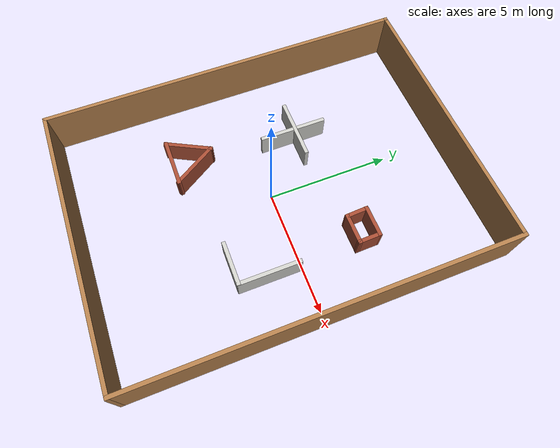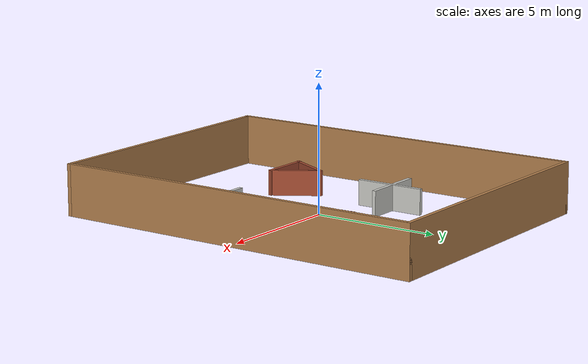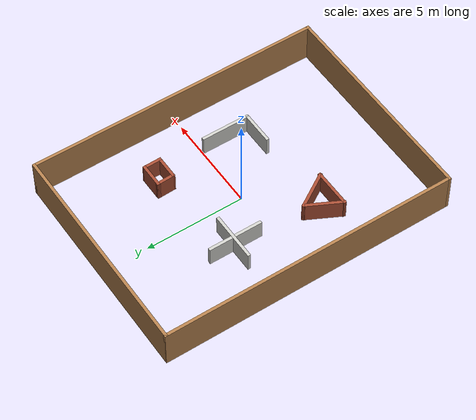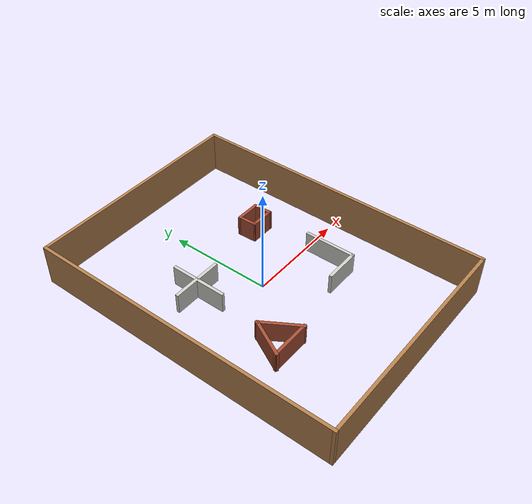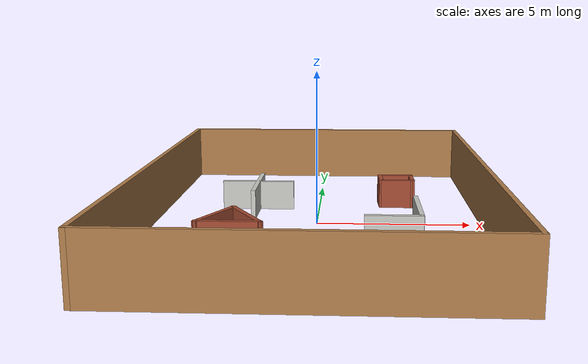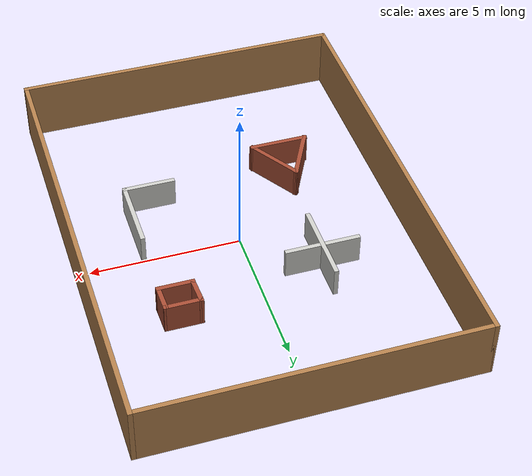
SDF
<?xml version='1.0'?>
<sdf version='1.7'>
  <model name='box'>
    <link name='Wall_11'>
      <pose>-2.152 1.857 0 0 -0 0</pose>
      <self_collide>0</self_collide>
      <kinematic>0</kinematic>
      <gravity>1</gravity>
      <enable_wind>0</enable_wind>
      <visual name='Wall_11_Visual'>
        <pose>0 0 0.5 0 -0 0</pose>
        <geometry>
          <box>
            <size>2.5 0.15 1</size>
          </box>
        </geometry>
        <material>
          <script>
            <uri>file://media/materials/scripts/gazebo.material</uri>
            <name>Gazebo/CeilingTiled</name>
          </script>
          <ambient>1 1 1 1</ambient>
          <diffuse>1 1 1 1</diffuse>
          <specular>0 0 0 1</specular>
          <emissive>0 0 0 1</emissive>
          <shader type='pixel'/>
        </material>
        <meta>
          <layer>0</layer>
        </meta>
        <cast_shadows>1</cast_shadows>
        <transparency>0</transparency>
      </visual>
      <collision name='Wall_11_Collision'>
        <laser_retro>0</laser_retro>
        <max_contacts>10</max_contacts>
        <pose>0 0 0.5 0 -0 0</pose>
        <geometry>
          <box>
            <size>2.5 0.15 1</size>
          </box>
        </geometry>
        <surface>
          <friction>
            <ode>
              <mu>1</mu>
              <mu2>1</mu2>
              <fdir1>0 0 0</fdir1>
              <slip1>0</slip1>
              <slip2>0</slip2>
            </ode>
            <torsional>
              <coefficient>1</coefficient>
              <patch_radius>0</patch_radius>
              <surface_radius>0</surface_radius>
              <use_patch_radius>1</use_patch_radius>
              <ode>
                <slip>0</slip>
              </ode>
            </torsional>
          </friction>
          <bounce>
            <restitution_coefficient>0</restitution_coefficient>
            <threshold>1e+06</threshold>
          </bounce>
          <contact>
            <collide_without_contact>0</collide_without_contact>
            <collide_without_contact_bitmask>1</collide_without_contact_bitmask>
            <collide_bitmask>1</collide_bitmask>
            <ode>
              <soft_cfm>0</soft_cfm>
              <soft_erp>0.2</soft_erp>
              <kp>1e+13</kp>
              <kd>1</kd>
              <max_vel>0.01</max_vel>
              <min_depth>0</min_depth>
            </ode>
            <bullet>
              <split_impulse>1</split_impulse>
              <split_impulse_penetration_threshold>-0.01</split_impulse_penetration_threshold>
              <soft_cfm>0</soft_cfm>
              <soft_erp>0.2</soft_erp>
              <kp>1e+13</kp>
              <kd>1</kd>
            </bullet>
          </contact>
        </surface>
      </collision>
    </link>
    <link name='Wall_13'>
      <pose>-2.155 1.764 0 0 0 -1.5708</pose>
      <self_collide>0</self_collide>
      <kinematic>0</kinematic>
      <gravity>1</gravity>
      <enable_wind>0</enable_wind>
      <visual name='Wall_13_Visual'>
        <pose>0 0 0.5 0 -0 0</pose>
        <geometry>
          <box>
            <size>2.75 0.15 1</size>
          </box>
        </geometry>
        <material>
          <script>
            <uri>file://media/materials/scripts/gazebo.material</uri>
            <name>Gazebo/CeilingTiled</name>
          </script>
          <ambient>1 1 1 1</ambient>
          <diffuse>1 1 1 1</diffuse>
          <specular>0 0 0 1</specular>
          <emissive>0 0 0 1</emissive>
          <shader type='pixel'/>
        </material>
        <meta>
          <layer>0</layer>
        </meta>
        <cast_shadows>1</cast_shadows>
        <transparency>0</transparency>
      </visual>
      <collision name='Wall_13_Collision'>
        <laser_retro>0</laser_retro>
        <max_contacts>10</max_contacts>
        <pose>0 0 0.5 0 -0 0</pose>
        <geometry>
          <box>
            <size>2.75 0.15 1</size>
          </box>
        </geometry>
        <surface>
          <friction>
            <ode>
              <mu>1</mu>
              <mu2>1</mu2>
              <fdir1>0 0 0</fdir1>
              <slip1>0</slip1>
              <slip2>0</slip2>
            </ode>
            <torsional>
              <coefficient>1</coefficient>
              <patch_radius>0</patch_radius>
              <surface_radius>0</surface_radius>
              <use_patch_radius>1</use_patch_radius>
              <ode>
                <slip>0</slip>
              </ode>
            </torsional>
          </friction>
          <bounce>
            <restitution_coefficient>0</restitution_coefficient>
            <threshold>1e+06</threshold>
          </bounce>
          <contact>
            <collide_without_contact>0</collide_without_contact>
            <collide_without_contact_bitmask>1</collide_without_contact_bitmask>
            <collide_bitmask>1</collide_bitmask>
            <ode>
              <soft_cfm>0</soft_cfm>
              <soft_erp>0.2</soft_erp>
              <kp>1e+13</kp>
              <kd>1</kd>
              <max_vel>0.01</max_vel>
              <min_depth>0</min_depth>
            </ode>
            <bullet>
              <split_impulse>1</split_impulse>
              <split_impulse_penetration_threshold>-0.01</split_impulse_penetration_threshold>
              <soft_cfm>0</soft_cfm>
              <soft_erp>0.2</soft_erp>
              <kp>1e+13</kp>
              <kd>1</kd>
            </bullet>
          </contact>
        </surface>
      </collision>
    </link>
    <link name='Wall_15'>
      <pose>2.724 3.029 0 0 -0 0</pose>
      <self_collide>0</self_collide>
      <kinematic>0</kinematic>
      <gravity>1</gravity>
      <enable_wind>0</enable_wind>
      <visual name='Wall_15_Visual'>
        <pose>0 0 0.5 0 -0 0</pose>
        <geometry>
          <box>
            <size>1.2678 0.15 1</size>
          </box>
        </geometry>
        <material>
          <script>
            <uri>file://media/materials/scripts/gazebo.material</uri>
            <name>Gazebo/Bricks</name>
          </script>
          <ambient>1 1 1 1</ambient>
          <diffuse>1 1 1 1</diffuse>
          <specular>0.2 0.2 0.2 1</specular>
          <emissive>0 0 0 1</emissive>
          <shader type='pixel'/>
        </material>
        <meta>
          <layer>0</layer>
        </meta>
        <cast_shadows>1</cast_shadows>
        <transparency>0</transparency>
      </visual>
      <collision name='Wall_15_Collision'>
        <laser_retro>0</laser_retro>
        <max_contacts>10</max_contacts>
        <pose>0 0 0.5 0 -0 0</pose>
        <geometry>
          <box>
            <size>1.2678 0.15 1</size>
          </box>
        </geometry>
        <surface>
          <friction>
            <ode>
              <mu>1</mu>
              <mu2>1</mu2>
              <fdir1>0 0 0</fdir1>
              <slip1>0</slip1>
              <slip2>0</slip2>
            </ode>
            <torsional>
              <coefficient>1</coefficient>
              <patch_radius>0</patch_radius>
              <surface_radius>0</surface_radius>
              <use_patch_radius>1</use_patch_radius>
              <ode>
                <slip>0</slip>
              </ode>
            </torsional>
          </friction>
          <bounce>
            <restitution_coefficient>0</restitution_coefficient>
            <threshold>1e+06</threshold>
          </bounce>
          <contact>
            <collide_without_contact>0</collide_without_contact>
            <collide_without_contact_bitmask>1</collide_without_contact_bitmask>
            <collide_bitmask>1</collide_bitmask>
            <ode>
              <soft_cfm>0</soft_cfm>
              <soft_erp>0.2</soft_erp>
              <kp>1e+13</kp>
              <kd>1</kd>
              <max_vel>0.01</max_vel>
              <min_depth>0</min_depth>
            </ode>
            <bullet>
              <split_impulse>1</split_impulse>
              <split_impulse_penetration_threshold>-0.01</split_impulse_penetration_threshold>
              <soft_cfm>0</soft_cfm>
              <soft_erp>0.2</soft_erp>
              <kp>1e+13</kp>
              <kd>1</kd>
            </bullet>
          </contact>
        </surface>
      </collision>
    </link>
    <link name='Wall_16'>
      <pose>3.2915 2.6215 0 0 0 -1.54994</pose>
      <self_collide>0</self_collide>
      <kinematic>0</kinematic>
      <gravity>1</gravity>
      <enable_wind>0</enable_wind>
      <visual name='Wall_16_Visual'>
        <pose>0 0 0.5 0 -0 0</pose>
        <geometry>
          <box>
            <size>0.965005 0.15 1</size>
          </box>
        </geometry>
        <material>
          <script>
            <uri>file://media/materials/scripts/gazebo.material</uri>
            <name>Gazebo/Bricks</name>
          </script>
          <ambient>1 1 1 1</ambient>
          <diffuse>1 1 1 1</diffuse>
          <specular>0.2 0.2 0.2 1</specular>
          <emissive>0 0 0 1</emissive>
          <shader type='pixel'/>
        </material>
        <meta>
          <layer>0</layer>
        </meta>
        <cast_shadows>1</cast_shadows>
        <transparency>0</transparency>
      </visual>
      <collision name='Wall_16_Collision'>
        <laser_retro>0</laser_retro>
        <max_contacts>10</max_contacts>
        <pose>0 0 0.5 0 -0 0</pose>
        <geometry>
          <box>
            <size>0.965005 0.15 1</size>
          </box>
        </geometry>
        <surface>
          <friction>
            <ode>
              <mu>1</mu>
              <mu2>1</mu2>
              <fdir1>0 0 0</fdir1>
              <slip1>0</slip1>
              <slip2>0</slip2>
            </ode>
            <torsional>
              <coefficient>1</coefficient>
              <patch_radius>0</patch_radius>
              <surface_radius>0</surface_radius>
              <use_patch_radius>1</use_patch_radius>
              <ode>
                <slip>0</slip>
              </ode>
            </torsional>
          </friction>
          <bounce>
            <restitution_coefficient>0</restitution_coefficient>
            <threshold>1e+06</threshold>
          </bounce>
          <contact>
            <collide_without_contact>0</collide_without_contact>
            <collide_without_contact_bitmask>1</collide_without_contact_bitmask>
            <collide_bitmask>1</collide_bitmask>
            <ode>
              <soft_cfm>0</soft_cfm>
              <soft_erp>0.2</soft_erp>
              <kp>1e+13</kp>
              <kd>1</kd>
              <max_vel>0.01</max_vel>
              <min_depth>0</min_depth>
            </ode>
            <bullet>
              <split_impulse>1</split_impulse>
              <split_impulse_penetration_threshold>-0.01</split_impulse_penetration_threshold>
              <soft_cfm>0</soft_cfm>
              <soft_erp>0.2</soft_erp>
              <kp>1e+13</kp>
              <kd>1</kd>
            </bullet>
          </contact>
        </surface>
      </collision>
    </link>
    <link name='Wall_17'>
      <pose>2.75 2.214 0 0 -0 3.14159</pose>
      <self_collide>0</self_collide>
      <kinematic>0</kinematic>
      <gravity>1</gravity>
      <enable_wind>0</enable_wind>
      <visual name='Wall_17_Visual'>
        <pose>0 0 0.5 0 -0 0</pose>
        <geometry>
          <box>
            <size>1.25 0.15 1</size>
          </box>
        </geometry>
        <material>
          <script>
            <uri>file://media/materials/scripts/gazebo.material</uri>
            <name>Gazebo/Bricks</name>
          </script>
          <ambient>1 1 1 1</ambient>
          <diffuse>1 1 1 1</diffuse>
          <specular>0.2 0.2 0.2 1</specular>
          <emissive>0 0 0 1</emissive>
          <shader type='pixel'/>
        </material>
        <meta>
          <layer>0</layer>
        </meta>
        <cast_shadows>1</cast_shadows>
        <transparency>0</transparency>
      </visual>
      <collision name='Wall_17_Collision'>
        <laser_retro>0</laser_retro>
        <max_contacts>10</max_contacts>
        <pose>0 0 0.5 0 -0 0</pose>
        <geometry>
          <box>
            <size>1.25 0.15 1</size>
          </box>
        </geometry>
        <surface>
          <friction>
            <ode>
              <mu>1</mu>
              <mu2>1</mu2>
              <fdir1>0 0 0</fdir1>
              <slip1>0</slip1>
              <slip2>0</slip2>
            </ode>
            <torsional>
              <coefficient>1</coefficient>
              <patch_radius>0</patch_radius>
              <surface_radius>0</surface_radius>
              <use_patch_radius>1</use_patch_radius>
              <ode>
                <slip>0</slip>
              </ode>
            </torsional>
          </friction>
          <bounce>
            <restitution_coefficient>0</restitution_coefficient>
            <threshold>1e+06</threshold>
          </bounce>
          <contact>
            <collide_without_contact>0</collide_without_contact>
            <collide_without_contact_bitmask>1</collide_without_contact_bitmask>
            <collide_bitmask>1</collide_bitmask>
            <ode>
              <soft_cfm>0</soft_cfm>
              <soft_erp>0.2</soft_erp>
              <kp>1e+13</kp>
              <kd>1</kd>
              <max_vel>0.01</max_vel>
              <min_depth>0</min_depth>
            </ode>
            <bullet>
              <split_impulse>1</split_impulse>
              <split_impulse_penetration_threshold>-0.01</split_impulse_penetration_threshold>
              <soft_cfm>0</soft_cfm>
              <soft_erp>0.2</soft_erp>
              <kp>1e+13</kp>
              <kd>1</kd>
            </bullet>
          </contact>
        </surface>
      </collision>
    </link>
    <link name='Wall_18'>
      <pose>2.1825 2.6215 0 0 -0 1.61372</pose>
      <self_collide>0</self_collide>
      <kinematic>0</kinematic>
      <gravity>1</gravity>
      <enable_wind>0</enable_wind>
      <visual name='Wall_18_Visual'>
        <pose>0 0 0.5 0 -0 0</pose>
        <geometry>
          <box>
            <size>0.965005 0.15 1</size>
          </box>
        </geometry>
        <material>
          <script>
            <uri>file://media/materials/scripts/gazebo.material</uri>
            <name>Gazebo/Bricks</name>
          </script>
          <ambient>1 1 1 1</ambient>
          <diffuse>1 1 1 1</diffuse>
          <specular>0.2 0.2 0.2 1</specular>
          <emissive>0 0 0 1</emissive>
          <shader type='pixel'/>
        </material>
        <meta>
          <layer>0</layer>
        </meta>
        <cast_shadows>1</cast_shadows>
        <transparency>0</transparency>
      </visual>
      <collision name='Wall_18_Collision'>
        <laser_retro>0</laser_retro>
        <max_contacts>10</max_contacts>
        <pose>0 0 0.5 0 -0 0</pose>
        <geometry>
          <box>
            <size>0.965005 0.15 1</size>
          </box>
        </geometry>
        <surface>
          <friction>
            <ode>
              <mu>1</mu>
              <mu2>1</mu2>
              <fdir1>0 0 0</fdir1>
              <slip1>0</slip1>
              <slip2>0</slip2>
            </ode>
            <torsional>
              <coefficient>1</coefficient>
              <patch_radius>0</patch_radius>
              <surface_radius>0</surface_radius>
              <use_patch_radius>1</use_patch_radius>
              <ode>
                <slip>0</slip>
              </ode>
            </torsional>
          </friction>
          <bounce>
            <restitution_coefficient>0</restitution_coefficient>
            <threshold>1e+06</threshold>
          </bounce>
          <contact>
            <collide_without_contact>0</collide_without_contact>
            <collide_without_contact_bitmask>1</collide_without_contact_bitmask>
            <collide_bitmask>1</collide_bitmask>
            <ode>
              <soft_cfm>0</soft_cfm>
              <soft_erp>0.2</soft_erp>
              <kp>1e+13</kp>
              <kd>1</kd>
              <max_vel>0.01</max_vel>
              <min_depth>0</min_depth>
            </ode>
            <bullet>
              <split_impulse>1</split_impulse>
              <split_impulse_penetration_threshold>-0.01</split_impulse_penetration_threshold>
              <soft_cfm>0</soft_cfm>
              <soft_erp>0.2</soft_erp>
              <kp>1e+13</kp>
              <kd>1</kd>
            </bullet>
          </contact>
        </surface>
      </collision>
    </link>
    <link name='Wall_24'>
      <pose>-2.89576 -2.49088 0 0 -0 1.09459</pose>
      <self_collide>0</self_collide>
      <kinematic>0</kinematic>
      <gravity>1</gravity>
      <enable_wind>0</enable_wind>
      <visual name='Wall_24_Visual'>
        <pose>0 0 0.5 0 -0 0</pose>
        <geometry>
          <box>
            <size>1.97704 0.15 1</size>
          </box>
        </geometry>
        <material>
          <script>
            <uri>file://media/materials/scripts/gazebo.material</uri>
            <name>Gazebo/Bricks</name>
          </script>
          <ambient>1 1 1 1</ambient>
          <diffuse>1 1 1 1</diffuse>
          <specular>0.2 0.2 0.2 1</specular>
          <emissive>0 0 0 1</emissive>
          <shader type='pixel'/>
        </material>
        <meta>
          <layer>0</layer>
        </meta>
        <cast_shadows>1</cast_shadows>
        <transparency>0</transparency>
      </visual>
      <collision name='Wall_24_Collision'>
        <laser_retro>0</laser_retro>
        <max_contacts>10</max_contacts>
        <pose>0 0 0.5 0 -0 0</pose>
        <geometry>
          <box>
            <size>1.97704 0.15 1</size>
          </box>
        </geometry>
        <surface>
          <friction>
            <ode>
              <mu>1</mu>
              <mu2>1</mu2>
              <fdir1>0 0 0</fdir1>
              <slip1>0</slip1>
              <slip2>0</slip2>
            </ode>
            <torsional>
              <coefficient>1</coefficient>
              <patch_radius>0</patch_radius>
              <surface_radius>0</surface_radius>
              <use_patch_radius>1</use_patch_radius>
              <ode>
                <slip>0</slip>
              </ode>
            </torsional>
          </friction>
          <bounce>
            <restitution_coefficient>0</restitution_coefficient>
            <threshold>1e+06</threshold>
          </bounce>
          <contact>
            <collide_without_contact>0</collide_without_contact>
            <collide_without_contact_bitmask>1</collide_without_contact_bitmask>
            <collide_bitmask>1</collide_bitmask>
            <ode>
              <soft_cfm>0</soft_cfm>
              <soft_erp>0.2</soft_erp>
              <kp>1e+13</kp>
              <kd>1</kd>
              <max_vel>0.01</max_vel>
              <min_depth>0</min_depth>
            </ode>
            <bullet>
              <split_impulse>1</split_impulse>
              <split_impulse_penetration_threshold>-0.01</split_impulse_penetration_threshold>
              <soft_cfm>0</soft_cfm>
              <soft_erp>0.2</soft_erp>
              <kp>1e+13</kp>
              <kd>1</kd>
            </bullet>
          </contact>
        </surface>
      </collision>
    </link>
    <link name='Wall_25'>
      <pose>-1.97077 -2.49088 0 0 0 -1.01325</pose>
      <self_collide>0</self_collide>
      <kinematic>0</kinematic>
      <gravity>1</gravity>
      <enable_wind>0</enable_wind>
      <visual name='Wall_25_Visual'>
        <pose>0 0 0.5 0 -0 0</pose>
        <geometry>
          <box>
            <size>2.06356 0.15 1</size>
          </box>
        </geometry>
        <material>
          <script>
            <uri>file://media/materials/scripts/gazebo.material</uri>
            <name>Gazebo/Bricks</name>
          </script>
          <ambient>1 1 1 1</ambient>
          <diffuse>1 1 1 1</diffuse>
          <specular>0.2 0.2 0.2 1</specular>
          <emissive>0 0 0 1</emissive>
          <shader type='pixel'/>
        </material>
        <meta>
          <layer>0</layer>
        </meta>
        <cast_shadows>1</cast_shadows>
        <transparency>0</transparency>
      </visual>
      <collision name='Wall_25_Collision'>
        <laser_retro>0</laser_retro>
        <max_contacts>10</max_contacts>
        <pose>0 0 0.5 0 -0 0</pose>
        <geometry>
          <box>
            <size>2.06356 0.15 1</size>
          </box>
        </geometry>
        <surface>
          <friction>
            <ode>
              <mu>1</mu>
              <mu2>1</mu2>
              <fdir1>0 0 0</fdir1>
              <slip1>0</slip1>
              <slip2>0</slip2>
            </ode>
            <torsional>
              <coefficient>1</coefficient>
              <patch_radius>0</patch_radius>
              <surface_radius>0</surface_radius>
              <use_patch_radius>1</use_patch_radius>
              <ode>
                <slip>0</slip>
              </ode>
            </torsional>
          </friction>
          <bounce>
            <restitution_coefficient>0</restitution_coefficient>
            <threshold>1e+06</threshold>
          </bounce>
          <contact>
            <collide_without_contact>0</collide_without_contact>
            <collide_without_contact_bitmask>1</collide_without_contact_bitmask>
            <collide_bitmask>1</collide_bitmask>
            <ode>
              <soft_cfm>0</soft_cfm>
              <soft_erp>0.2</soft_erp>
              <kp>1e+13</kp>
              <kd>1</kd>
              <max_vel>0.01</max_vel>
              <min_depth>0</min_depth>
            </ode>
            <bullet>
              <split_impulse>1</split_impulse>
              <split_impulse_penetration_threshold>-0.01</split_impulse_penetration_threshold>
              <soft_cfm>0</soft_cfm>
              <soft_erp>0.2</soft_erp>
              <kp>1e+13</kp>
              <kd>1</kd>
            </bullet>
          </contact>
        </surface>
      </collision>
    </link>
    <link name='Wall_26'>
      <pose>-2.38953 -3.28527 0 0 -0 3.14159</pose>
      <self_collide>0</self_collide>
      <kinematic>0</kinematic>
      <gravity>1</gravity>
      <enable_wind>0</enable_wind>
      <visual name='Wall_26_Visual'>
        <pose>0 0 0.5 0 -0 0</pose>
        <geometry>
          <box>
            <size>2 0.15 1</size>
          </box>
        </geometry>
        <material>
          <script>
            <uri>file://media/materials/scripts/gazebo.material</uri>
            <name>Gazebo/Bricks</name>
          </script>
          <ambient>1 1 1 1</ambient>
          <diffuse>1 1 1 1</diffuse>
          <specular>0.2 0.2 0.2 1</specular>
          <emissive>0 0 0 1</emissive>
          <shader type='pixel'/>
        </material>
        <meta>
          <layer>0</layer>
        </meta>
        <cast_shadows>1</cast_shadows>
        <transparency>0</transparency>
      </visual>
      <collision name='Wall_26_Collision'>
        <laser_retro>0</laser_retro>
        <max_contacts>10</max_contacts>
        <pose>0 0 0.5 0 -0 0</pose>
        <geometry>
          <box>
            <size>2 0.15 1</size>
          </box>
        </geometry>
        <surface>
          <friction>
            <ode>
              <mu>1</mu>
              <mu2>1</mu2>
              <fdir1>0 0 0</fdir1>
              <slip1>0</slip1>
              <slip2>0</slip2>
            </ode>
            <torsional>
              <coefficient>1</coefficient>
              <patch_radius>0</patch_radius>
              <surface_radius>0</surface_radius>
              <use_patch_radius>1</use_patch_radius>
              <ode>
                <slip>0</slip>
              </ode>
            </torsional>
          </friction>
          <bounce>
            <restitution_coefficient>0</restitution_coefficient>
            <threshold>1e+06</threshold>
          </bounce>
          <contact>
            <collide_without_contact>0</collide_without_contact>
            <collide_without_contact_bitmask>1</collide_without_contact_bitmask>
            <collide_bitmask>1</collide_bitmask>
            <ode>
              <soft_cfm>0</soft_cfm>
              <soft_erp>0.2</soft_erp>
              <kp>1e+13</kp>
              <kd>1</kd>
              <max_vel>0.01</max_vel>
              <min_depth>0</min_depth>
            </ode>
            <bullet>
              <split_impulse>1</split_impulse>
              <split_impulse_penetration_threshold>-0.01</split_impulse_penetration_threshold>
              <soft_cfm>0</soft_cfm>
              <soft_erp>0.2</soft_erp>
              <kp>1e+13</kp>
              <kd>1</kd>
            </bullet>
          </contact>
        </surface>
      </collision>
    </link>
    <link name='Wall_28'>
      <pose>2.38813 -2.48047 0 0 -0 0</pose>
      <self_collide>0</self_collide>
      <kinematic>0</kinematic>
      <gravity>1</gravity>
      <enable_wind>0</enable_wind>
      <visual name='Wall_28_Visual'>
        <pose>0 0 0.5 0 -0 0</pose>
        <geometry>
          <box>
            <size>1.75 0.15 1</size>
          </box>
        </geometry>
        <material>
          <script>
            <uri>file://media/materials/scripts/gazebo.material</uri>
            <name>Gazebo/CeilingTiled</name>
          </script>
          <ambient>1 1 1 1</ambient>
          <diffuse>1 1 1 1</diffuse>
          <specular>0 0 0 1</specular>
          <emissive>0 0 0 1</emissive>
          <shader type='pixel'/>
        </material>
        <meta>
          <layer>0</layer>
        </meta>
        <cast_shadows>1</cast_shadows>
        <transparency>0</transparency>
      </visual>
      <collision name='Wall_28_Collision'>
        <laser_retro>0</laser_retro>
        <max_contacts>10</max_contacts>
        <pose>0 0 0.5 0 -0 0</pose>
        <geometry>
          <box>
            <size>1.75 0.15 1</size>
          </box>
        </geometry>
        <surface>
          <friction>
            <ode>
              <mu>1</mu>
              <mu2>1</mu2>
              <fdir1>0 0 0</fdir1>
              <slip1>0</slip1>
              <slip2>0</slip2>
            </ode>
            <torsional>
              <coefficient>1</coefficient>
              <patch_radius>0</patch_radius>
              <surface_radius>0</surface_radius>
              <use_patch_radius>1</use_patch_radius>
              <ode>
                <slip>0</slip>
              </ode>
            </torsional>
          </friction>
          <bounce>
            <restitution_coefficient>0</restitution_coefficient>
            <threshold>1e+06</threshold>
          </bounce>
          <contact>
            <collide_without_contact>0</collide_without_contact>
            <collide_without_contact_bitmask>1</collide_without_contact_bitmask>
            <collide_bitmask>1</collide_bitmask>
            <ode>
              <soft_cfm>0</soft_cfm>
              <soft_erp>0.2</soft_erp>
              <kp>1e+13</kp>
              <kd>1</kd>
              <max_vel>0.01</max_vel>
              <min_depth>0</min_depth>
            </ode>
            <bullet>
              <split_impulse>1</split_impulse>
              <split_impulse_penetration_threshold>-0.01</split_impulse_penetration_threshold>
              <soft_cfm>0</soft_cfm>
              <soft_erp>0.2</soft_erp>
              <kp>1e+13</kp>
              <kd>1</kd>
            </bullet>
          </contact>
        </surface>
      </collision>
    </link>
    <link name='Wall_29'>
      <pose>3.20562 -1.28798 0 0 -0 1.5708</pose>
      <self_collide>0</self_collide>
      <kinematic>0</kinematic>
      <gravity>1</gravity>
      <enable_wind>0</enable_wind>
      <visual name='Wall_29_Visual'>
        <pose>0 0 0.5 0 -0 0</pose>
        <geometry>
          <box>
            <size>2.5 0.15 1</size>
          </box>
        </geometry>
        <material>
          <script>
            <uri>file://media/materials/scripts/gazebo.material</uri>
            <name>Gazebo/CeilingTiled</name>
          </script>
          <ambient>1 1 1 1</ambient>
          <diffuse>1 1 1 1</diffuse>
          <specular>0 0 0 1</specular>
          <emissive>0 0 0 1</emissive>
          <shader type='pixel'/>
        </material>
        <meta>
          <layer>0</layer>
        </meta>
        <cast_shadows>1</cast_shadows>
        <transparency>0</transparency>
      </visual>
      <collision name='Wall_29_Collision'>
        <laser_retro>0</laser_retro>
        <max_contacts>10</max_contacts>
        <pose>0 0 0.5 0 -0 0</pose>
        <geometry>
          <box>
            <size>2.5 0.15 1</size>
          </box>
        </geometry>
        <surface>
          <friction>
            <ode>
              <mu>1</mu>
              <mu2>1</mu2>
              <fdir1>0 0 0</fdir1>
              <slip1>0</slip1>
              <slip2>0</slip2>
            </ode>
            <torsional>
              <coefficient>1</coefficient>
              <patch_radius>0</patch_radius>
              <surface_radius>0</surface_radius>
              <use_patch_radius>1</use_patch_radius>
              <ode>
                <slip>0</slip>
              </ode>
            </torsional>
          </friction>
          <bounce>
            <restitution_coefficient>0</restitution_coefficient>
            <threshold>1e+06</threshold>
          </bounce>
          <contact>
            <collide_without_contact>0</collide_without_contact>
            <collide_without_contact_bitmask>1</collide_without_contact_bitmask>
            <collide_bitmask>1</collide_bitmask>
            <ode>
              <soft_cfm>0</soft_cfm>
              <soft_erp>0.2</soft_erp>
              <kp>1e+13</kp>
              <kd>1</kd>
              <max_vel>0.01</max_vel>
              <min_depth>0</min_depth>
            </ode>
            <bullet>
              <split_impulse>1</split_impulse>
              <split_impulse_penetration_threshold>-0.01</split_impulse_penetration_threshold>
              <soft_cfm>0</soft_cfm>
              <soft_erp>0.2</soft_erp>
              <kp>1e+13</kp>
              <kd>1</kd>
            </bullet>
          </contact>
        </surface>
      </collision>
    </link>
    <link name='Wall_6'>
      <pose>0 7.425 0 0 -0 0</pose>
      <self_collide>0</self_collide>
      <kinematic>0</kinematic>
      <gravity>1</gravity>
      <enable_wind>0</enable_wind>
      <inertial>
        <mass>1</mass>
        <pose>0 0 0 0 -0 0</pose>
        <inertia>
          <ixx>1</ixx>
          <ixy>0</ixy>
          <ixz>0</ixz>
          <iyy>1</iyy>
          <iyz>0</iyz>
          <izz>1</izz>
        </inertia>
      </inertial>
      <visual name='Wall_6_Visual'>
        <pose>0 0 1 0 -0 0</pose>
        <geometry>
          <box>
            <size>11 0.15 2</size>
          </box>
        </geometry>
        <material>
          <script>
            <uri>file://media/materials/scripts/gazebo.material</uri>
            <name>Gazebo/Wood</name>
          </script>
          <ambient>1 1 1 1</ambient>
          <diffuse>1 1 1 1</diffuse>
          <specular>0.2 0.2 0.2 1</specular>
          <emissive>0 0 0 1</emissive>
          <shader type='pixel'>
            <normal_map>__default__</normal_map>
          </shader>
        </material>
        <meta>
          <layer>0</layer>
        </meta>
        <cast_shadows>1</cast_shadows>
        <transparency>0</transparency>
      </visual>
      <collision name='Wall_6_Collision'>
        <laser_retro>0</laser_retro>
        <max_contacts>10</max_contacts>
        <pose>0 0 1 0 -0 0</pose>
        <geometry>
          <box>
            <size>11 0.15 2</size>
          </box>
        </geometry>
        <surface>
          <friction>
            <ode>
              <mu>1</mu>
              <mu2>1</mu2>
              <fdir1>0 0 0</fdir1>
              <slip1>0</slip1>
              <slip2>0</slip2>
            </ode>
            <torsional>
              <coefficient>1</coefficient>
              <patch_radius>0</patch_radius>
              <surface_radius>0</surface_radius>
              <use_patch_radius>1</use_patch_radius>
              <ode>
                <slip>0</slip>
              </ode>
            </torsional>
          </friction>
          <bounce>
            <restitution_coefficient>0</restitution_coefficient>
            <threshold>1e+06</threshold>
          </bounce>
          <contact>
            <collide_without_contact>0</collide_without_contact>
            <collide_without_contact_bitmask>1</collide_without_contact_bitmask>
            <collide_bitmask>1</collide_bitmask>
            <ode>
              <soft_cfm>0</soft_cfm>
              <soft_erp>0.2</soft_erp>
              <kp>1e+13</kp>
              <kd>1</kd>
              <max_vel>0.01</max_vel>
              <min_depth>0</min_depth>
            </ode>
            <bullet>
              <split_impulse>1</split_impulse>
              <split_impulse_penetration_threshold>-0.01</split_impulse_penetration_threshold>
              <soft_cfm>0</soft_cfm>
              <soft_erp>0.2</soft_erp>
              <kp>1e+13</kp>
              <kd>1</kd>
            </bullet>
          </contact>
        </surface>
      </collision>
    </link>
    <link name='Wall_7'>
      <pose>5.425 0 0 0 0 -1.5708</pose>
      <self_collide>0</self_collide>
      <kinematic>0</kinematic>
      <gravity>1</gravity>
      <enable_wind>0</enable_wind>
      <inertial>
        <mass>1</mass>
        <pose>0 0 0 0 -0 0</pose>
        <inertia>
          <ixx>1</ixx>
          <ixy>0</ixy>
          <ixz>0</ixz>
          <iyy>1</iyy>
          <iyz>0</iyz>
          <izz>1</izz>
        </inertia>
      </inertial>
      <visual name='Wall_7_Visual'>
        <pose>0 0 1 0 -0 0</pose>
        <geometry>
          <box>
            <size>15 0.15 2</size>
          </box>
        </geometry>
        <material>
          <script>
            <uri>file://media/materials/scripts/gazebo.material</uri>
            <name>Gazebo/Wood</name>
          </script>
          <ambient>1 1 1 1</ambient>
          <diffuse>1 1 1 1</diffuse>
          <specular>0.2 0.2 0.2 1</specular>
          <emissive>0 0 0 1</emissive>
          <shader type='pixel'>
            <normal_map>__default__</normal_map>
          </shader>
        </material>
        <meta>
          <layer>0</layer>
        </meta>
        <cast_shadows>1</cast_shadows>
        <transparency>0</transparency>
      </visual>
      <collision name='Wall_7_Collision'>
        <laser_retro>0</laser_retro>
        <max_contacts>10</max_contacts>
        <pose>0 0 1 0 -0 0</pose>
        <geometry>
          <box>
            <size>15 0.15 2</size>
          </box>
        </geometry>
        <surface>
          <friction>
            <ode>
              <mu>1</mu>
              <mu2>1</mu2>
              <fdir1>0 0 0</fdir1>
              <slip1>0</slip1>
              <slip2>0</slip2>
            </ode>
            <torsional>
              <coefficient>1</coefficient>
              <patch_radius>0</patch_radius>
              <surface_radius>0</surface_radius>
              <use_patch_radius>1</use_patch_radius>
              <ode>
                <slip>0</slip>
              </ode>
            </torsional>
          </friction>
          <bounce>
            <restitution_coefficient>0</restitution_coefficient>
            <threshold>1e+06</threshold>
          </bounce>
          <contact>
            <collide_without_contact>0</collide_without_contact>
            <collide_without_contact_bitmask>1</collide_without_contact_bitmask>
            <collide_bitmask>1</collide_bitmask>
            <ode>
              <soft_cfm>0</soft_cfm>
              <soft_erp>0.2</soft_erp>
              <kp>1e+13</kp>
              <kd>1</kd>
              <max_vel>0.01</max_vel>
              <min_depth>0</min_depth>
            </ode>
            <bullet>
              <split_impulse>1</split_impulse>
              <split_impulse_penetration_threshold>-0.01</split_impulse_penetration_threshold>
              <soft_cfm>0</soft_cfm>
              <soft_erp>0.2</soft_erp>
              <kp>1e+13</kp>
              <kd>1</kd>
            </bullet>
          </contact>
        </surface>
      </collision>
    </link>
    <link name='Wall_8'>
      <pose>0 -7.425 0 0 -0 3.14159</pose>
      <self_collide>0</self_collide>
      <kinematic>0</kinematic>
      <gravity>1</gravity>
      <enable_wind>0</enable_wind>
      <inertial>
        <mass>1</mass>
        <pose>0 0 0 0 -0 0</pose>
        <inertia>
          <ixx>1</ixx>
          <ixy>0</ixy>
          <ixz>0</ixz>
          <iyy>1</iyy>
          <iyz>0</iyz>
          <izz>1</izz>
        </inertia>
      </inertial>
      <visual name='Wall_8_Visual'>
        <pose>0 0 1 0 -0 0</pose>
        <geometry>
          <box>
            <size>11 0.15 2</size>
          </box>
        </geometry>
        <material>
          <script>
            <uri>file://media/materials/scripts/gazebo.material</uri>
            <name>Gazebo/Wood</name>
          </script>
          <ambient>1 1 1 1</ambient>
          <diffuse>1 1 1 1</diffuse>
          <specular>0.2 0.2 0.2 1</specular>
          <emissive>0 0 0 1</emissive>
          <shader type='pixel'>
            <normal_map>__default__</normal_map>
          </shader>
        </material>
        <meta>
          <layer>0</layer>
        </meta>
        <cast_shadows>1</cast_shadows>
        <transparency>0</transparency>
      </visual>
      <collision name='Wall_8_Collision'>
        <laser_retro>0</laser_retro>
        <max_contacts>10</max_contacts>
        <pose>0 0 1 0 -0 0</pose>
        <geometry>
          <box>
            <size>11 0.15 2</size>
          </box>
        </geometry>
        <surface>
          <friction>
            <ode>
              <mu>1</mu>
              <mu2>1</mu2>
              <fdir1>0 0 0</fdir1>
              <slip1>0</slip1>
              <slip2>0</slip2>
            </ode>
            <torsional>
              <coefficient>1</coefficient>
              <patch_radius>0</patch_radius>
              <surface_radius>0</surface_radius>
              <use_patch_radius>1</use_patch_radius>
              <ode>
                <slip>0</slip>
              </ode>
            </torsional>
          </friction>
          <bounce>
            <restitution_coefficient>0</restitution_coefficient>
            <threshold>1e+06</threshold>
          </bounce>
          <contact>
            <collide_without_contact>0</collide_without_contact>
            <collide_without_contact_bitmask>1</collide_without_contact_bitmask>
            <collide_bitmask>1</collide_bitmask>
            <ode>
              <soft_cfm>0</soft_cfm>
              <soft_erp>0.2</soft_erp>
              <kp>1e+13</kp>
              <kd>1</kd>
              <max_vel>0.01</max_vel>
              <min_depth>0</min_depth>
            </ode>
            <bullet>
              <split_impulse>1</split_impulse>
              <split_impulse_penetration_threshold>-0.01</split_impulse_penetration_threshold>
              <soft_cfm>0</soft_cfm>
              <soft_erp>0.2</soft_erp>
              <kp>1e+13</kp>
              <kd>1</kd>
            </bullet>
          </contact>
        </surface>
      </collision>
    </link>
    <link name='Wall_9'>
      <pose>-5.425 0 0 0 -0 1.5708</pose>
      <self_collide>0</self_collide>
      <kinematic>0</kinematic>
      <gravity>1</gravity>
      <enable_wind>0</enable_wind>
      <inertial>
        <mass>1</mass>
        <pose>0 0 0 0 -0 0</pose>
        <inertia>
          <ixx>1</ixx>
          <ixy>0</ixy>
          <ixz>0</ixz>
          <iyy>1</iyy>
          <iyz>0</iyz>
          <izz>1</izz>
        </inertia>
      </inertial>
      <visual name='Wall_9_Visual'>
        <pose>0 0 1 0 -0 0</pose>
        <geometry>
          <box>
            <size>15 0.15 2</size>
          </box>
        </geometry>
        <material>
          <script>
            <uri>file://media/materials/scripts/gazebo.material</uri>
            <name>Gazebo/Wood</name>
          </script>
          <ambient>1 1 1 1</ambient>
          <diffuse>1 1 1 1</diffuse>
          <specular>0.2 0.2 0.2 1</specular>
          <emissive>0 0 0 1</emissive>
          <shader type='pixel'>
            <normal_map>__default__</normal_map>
          </shader>
        </material>
        <meta>
          <layer>0</layer>
        </meta>
        <cast_shadows>1</cast_shadows>
        <transparency>0</transparency>
      </visual>
      <collision name='Wall_9_Collision'>
        <laser_retro>0</laser_retro>
        <max_contacts>10</max_contacts>
        <pose>0 0 1 0 -0 0</pose>
        <geometry>
          <box>
            <size>15 0.15 2</size>
          </box>
        </geometry>
        <surface>
          <friction>
            <ode>
              <mu>1</mu>
              <mu2>1</mu2>
              <fdir1>0 0 0</fdir1>
              <slip1>0</slip1>
              <slip2>0</slip2>
            </ode>
            <torsional>
              <coefficient>1</coefficient>
              <patch_radius>0</patch_radius>
              <surface_radius>0</surface_radius>
              <use_patch_radius>1</use_patch_radius>
              <ode>
                <slip>0</slip>
              </ode>
            </torsional>
          </friction>
          <bounce>
            <restitution_coefficient>0</restitution_coefficient>
            <threshold>1e+06</threshold>
          </bounce>
          <contact>
            <collide_without_contact>0</collide_without_contact>
            <collide_without_contact_bitmask>1</collide_without_contact_bitmask>
            <collide_bitmask>1</collide_bitmask>
            <ode>
              <soft_cfm>0</soft_cfm>
              <soft_erp>0.2</soft_erp>
              <kp>1e+13</kp>
              <kd>1</kd>
              <max_vel>0.01</max_vel>
              <min_depth>0</min_depth>
            </ode>
            <bullet>
              <split_impulse>1</split_impulse>
              <split_impulse_penetration_threshold>-0.01</split_impulse_penetration_threshold>
              <soft_cfm>0</soft_cfm>
              <soft_erp>0.2</soft_erp>
              <kp>1e+13</kp>
              <kd>1</kd>
            </bullet>
          </contact>
        </surface>
      </collision>
    </link>
    <static>1</static>
    <allow_auto_disable>1</allow_auto_disable>
  </model>
</sdf>
